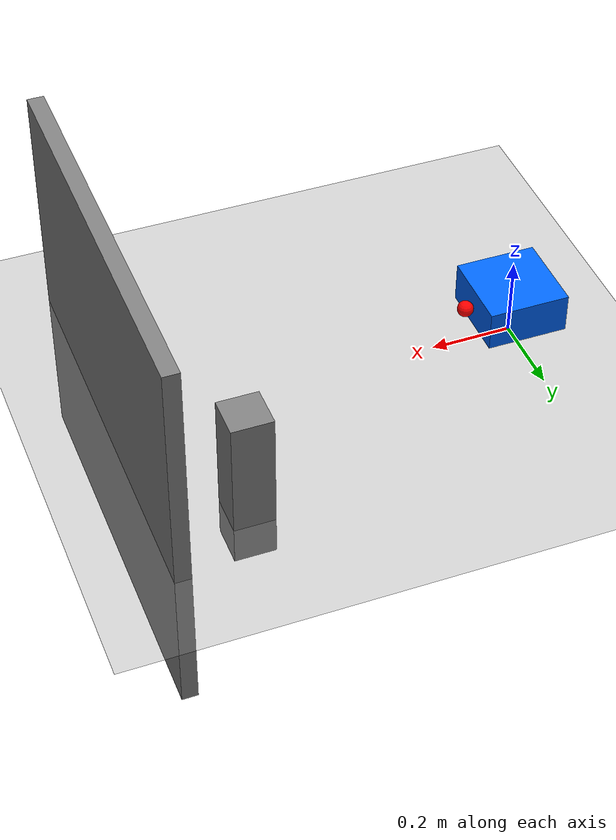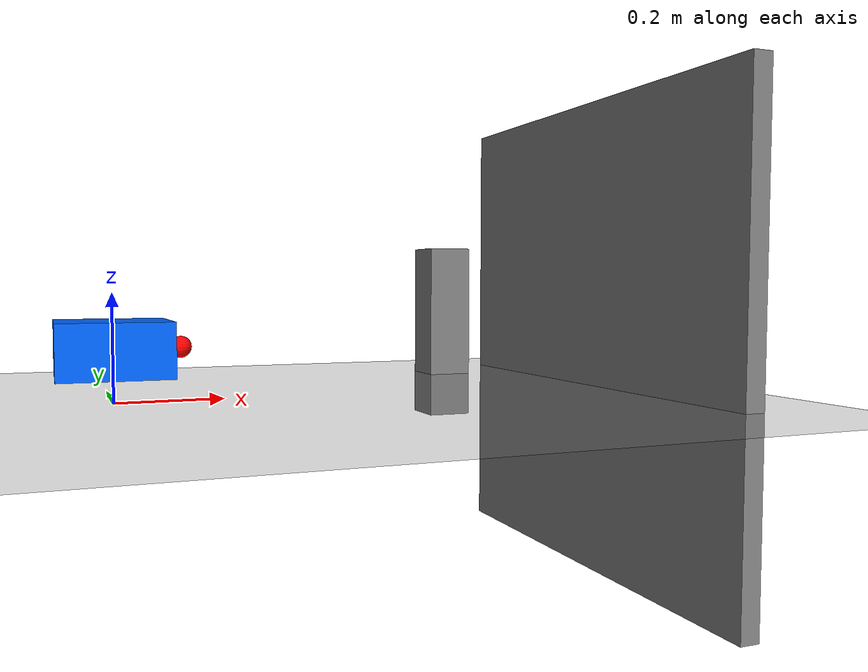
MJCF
<mujoco model="ultrasonic_test">
  <compiler angle="radian"/>

  <option timestep="0.001" gravity="0 0 -9.81"/>

  <worldbody>
    <geom name="ground" type="plane" size="5 5 0.1" pos="0 0 0"/>

    <body name="base_footprint" pos="0 0 0.1">
      <freejoint name="base_freejoint"/>
      <geom name="base_geom" type="box" size="0.1 0.1 0.05" pos="0 0 0" rgba="0 0.4 1 1"/>

      <!-- Hakoniwa ultrasonic uses local +X as measurement axis -->
      <site name="front_ultrasonic_site"
            pos="0.12 0 0"
            size="0.02"
            rgba="1 0 0 1"/>
    </body>

    <!-- Front wall: expected projected distance roughly 1.0 - 0.12 = 0.88 m -->
    <body name="front_wall" pos="1.0 0 0.1">
      <geom name="front_wall_geom" type="box" size="0.02 0.5 0.5"/>
    </body>

    <!-- Diagonal obstacle for cone ray test -->
    <body name="diag_obstacle" pos="0.8 0.35 0.1">
      <geom name="diag_obstacle_geom" type="box" size="0.05 0.05 0.2"/>
    </body>
  </worldbody>
</mujoco>
